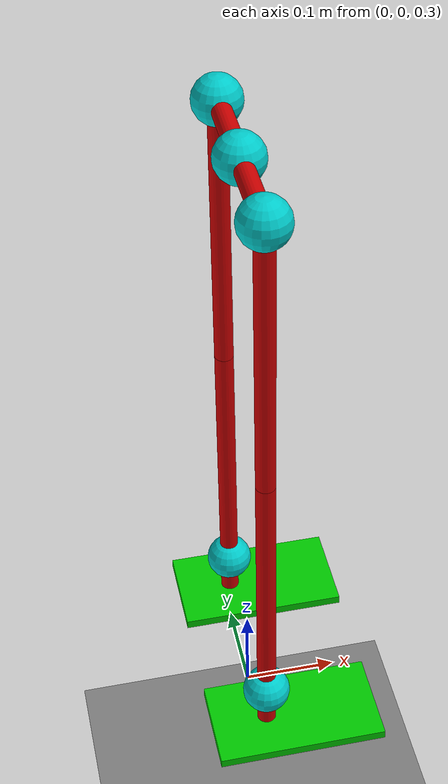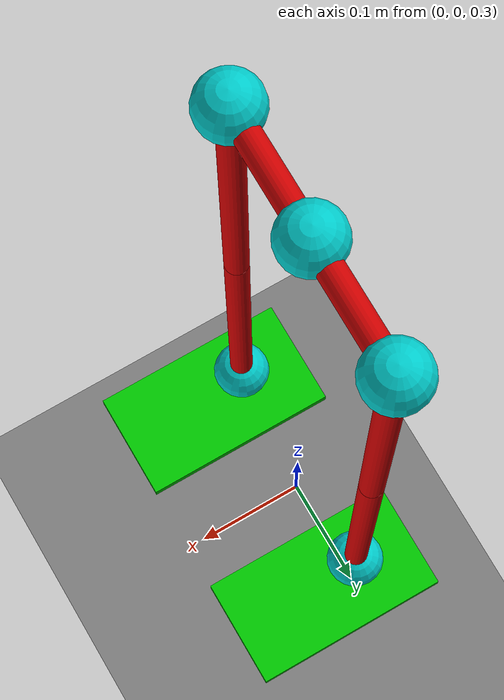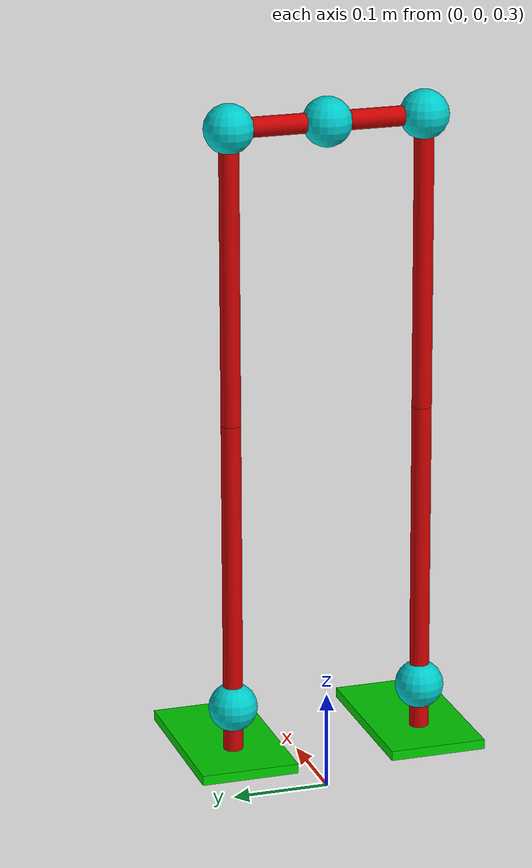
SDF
<?xml version="1.0" ?>
<sdf version="1.6">
  <world name="default">
    <scene>
      <ambient>0.4 0.4 0.4</ambient>
      <grid>false</grid>
    </scene>

    <!-- Light setup for illumination -->
    <light type="directional" name="sun">
      <cast_shadows>false</cast_shadows>
      <pose>5 5 5 0 0 0</pose>
      <diffuse>0.8 0.8 0.8 1</diffuse>
      <specular>0.2 0.2 0.2 1</specular>
      <attenuation>
        <range>1000</range>
        <constant>0.9</constant>
        <linear>0.01</linear>
        <quadratic>0.001</quadratic>
      </attenuation>
      <direction>-1 -1 -1</direction>
    </light>

    <model name="ground_plane">
      <pose>0 0 0 0 0 0</pose>
      <static>true</static>
      <link name="ground_plane_link">
        <collision name="ground_plane_collision">
          <geometry>
            <plane>
              <normal>0 0 1</normal>
              <size>5 5</size>
            </plane>
          </geometry>
        </collision>
        <visual name="ground_plane_visual">
          <geometry>
            <plane>
              <normal>0 0 1</normal>
              <size>5 5</size>
            </plane>
          </geometry>
          <material>
            <diffuse>0.5 0.5 0.5 1</diffuse>
            <specular>0.5 0.5 0.5 1</specular>
          </material>
        </visual>
      </link>
    </model>

    <model name="robot">
      <pose>0 0 1 0 0 0</pose> <!-- 整體懸浮在 z=1.0 -->

      <!-- 髖部基座（共享） -->
      <link name="hip_base">
        <collision name="hip_base_collision">
          <geometry>
            <sphere>
              <radius>0.025</radius>
            </sphere>
          </geometry>
        </collision>
        <visual name="hip_base_visual">
          <geometry>
            <sphere>
              <radius>0.025</radius>
            </sphere>
          </geometry>
          <material>
            <ambient>0 0.5 0.5 1</ambient>
            <diffuse>0 0.8 0.8 1</diffuse>
            <specular>0.8 0.8 0.8 1</specular>
          </material>
        </visual>
      </link>

      <!-- 右腿（原始腿） -->
      <link name="right_link0">
        <pose relative_to="right_joint0">0 -0.05 0 1.5708 0 0</pose>
        <collision name="right_link0_collision_0">
          <geometry>
            <cylinder>
              <radius>0.01</radius>
              <length>0.1</length>
            </cylinder>
          </geometry>
        </collision>
        <visual name="right_link0_visual_0">
          <geometry>
            <cylinder>
              <radius>0.01</radius>
              <length>0.1</length>
            </cylinder>
          </geometry>
          <material>
            <ambient>0.5 0 0 1</ambient>
            <diffuse>0.8 0 0 1</diffuse>
            <specular>0.8 0 0 1</specular>
          </material>
        </visual>
      </link>

      <link name="right_hip1">
        <pose relative_to="right_joint1">0 0 0 0 0 0</pose>
        <collision name="right_hip1_collision">
          <geometry>
            <sphere>
              <radius>0.025</radius>
            </sphere>
          </geometry>
        </collision>
        <visual name="right_hip1_visual">
          <geometry>
            <sphere>
              <radius>0.025</radius>
            </sphere>
          </geometry>
          <material>
            <ambient>0 0.5 0.5 1</ambient>
            <diffuse>0 0.8 0.8 1</diffuse>
            <specular>0.8 0.8 0.8 1</specular>
          </material>
        </visual>
      </link>

      <link name="right_hip2">
        <pose relative_to="right_joint2">0 0 0 0 0 0</pose>
        <collision name="right_hip2_collision">
          <geometry>
            <sphere>
              <radius>0.025</radius>
            </sphere>
          </geometry>
        </collision>
        <visual name="right_hip2_visual">
          <geometry>
            <sphere>
              <radius>0.025</radius>
            </sphere>
          </geometry>
          <material>
            <ambient>0 0.5 0.5 1</ambient>
            <diffuse>0 0.8 0.8 1</diffuse>
            <specular>0.8 0.8 0.8 1</specular>
          </material>
        </visual>
      </link>

      <link name="right_link1">
        <pose relative_to="right_joint3">0 0 -0.15 0 0 0</pose>
        <collision name="right_link1_collision">
          <geometry>
            <cylinder>
              <radius>0.01</radius>
              <length>0.3</length>
            </cylinder>
          </geometry>
        </collision>
        <visual name="right_link1_visual">
          <geometry>
            <cylinder>
              <radius>0.01</radius>
              <length>0.3</length>
            </cylinder>
          </geometry>
          <material>
            <ambient>0.5 0 0 1</ambient>
            <diffuse>0.8 0 0 1</diffuse>
            <specular>0.8 0 0 1</specular>
          </material>
        </visual>
      </link>

      <link name="right_link2">
        <pose relative_to="right_joint4">0 0 -0.15 0 0 0</pose>
        <collision name="right_link2_collision">
          <geometry>
            <cylinder>
              <radius>0.01</radius>
              <length>0.3</length>
            </cylinder>
          </geometry>
        </collision>
        <visual name="right_link2_visual">
          <geometry>
            <cylinder>
              <radius>0.01</radius>
              <length>0.3</length>
            </cylinder>
          </geometry>
          <material>
            <ambient>0.5 0 0 1</ambient>
            <diffuse>0.8 0 0 1</diffuse>
            <specular>0.8 0 0 1</specular>
          </material>
        </visual>
      </link>

      <link name="right_ankle">
        <pose relative_to="right_joint5">0 0 0 0 0 0</pose>
        <collision name="right_ankle_collision">
          <geometry>
            <sphere>
              <radius>0.025</radius>
            </sphere>
          </geometry>
        </collision>
        <visual name="right_ankle_visual">
          <geometry>
            <sphere>
              <radius>0.025</radius>
            </sphere>
          </geometry>
          <material>
            <ambient>0 0.5 0.5 1</ambient>
            <diffuse>0 0.8 0.8 1</diffuse>
            <specular>0.8 0.8 0.8 1</specular>
          </material>
        </visual>
      </link>

      <link name="right_link3">
        <pose relative_to="right_joint6">0 0 -0.025 0 0 0</pose>
        <collision name="right_link3_collision">
          <geometry>
            <cylinder>
              <radius>0.01</radius>
              <length>0.05</length>
            </cylinder>
          </geometry>
        </collision>
        <visual name="right_link3_visual">
          <geometry>
            <cylinder>
              <radius>0.01</radius>
              <length>0.05</length>
            </cylinder>
          </geometry>
          <material>
            <ambient>0.5 0 0 1</ambient>
            <diffuse>0.8 0 0 1</diffuse>
            <specular>0.8 0 0 1</specular>
          </material>
        </visual>
      </link>

      <link name="right_link4">
        <pose relative_to="right_link3">0.03 0 -0.025 0 0 0</pose>
        <collision name="right_link4_collision">
          <geometry>
            <box>
              <size>0.18 0.1 0.01</size>
            </box>
          </geometry>
        </collision>
        <visual name="right_link4_visual">
          <geometry>
            <box>
              <size>0.18 0.1 0.01</size>
            </box>
          </geometry>
          <material>
            <ambient>0 0.5 0 1</ambient>
            <diffuse>0 0.8 0 1</diffuse>
            <specular>0.8 0.8 0.8 1</specular>
          </material>
        </visual>
      </link>

      <!-- 左腿（對稱複製） -->
      <link name="left_link0">
        <pose relative_to="left_joint0">0 0.05 0 1.5708 0 0</pose> <!-- Y 軸對稱 -->
        <collision name="left_link0_collision_0">
          <geometry>
            <cylinder>
              <radius>0.01</radius>
              <length>0.1</length>
            </cylinder>
          </geometry>
        </collision>
        <visual name="left_link0_visual_0">
          <geometry>
            <cylinder>
              <radius>0.01</radius>
              <length>0.1</length>
            </cylinder>
          </geometry>
          <material>
            <ambient>0.5 0 0 1</ambient>
            <diffuse>0.8 0 0 1</diffuse>
            <specular>0.8 0 0 1</specular>
          </material>
        </visual>
      </link>

      <link name="left_hip1">
        <pose relative_to="left_joint1">0 0 0 0 0 0</pose>
        <collision name="left_hip1_collision">
          <geometry>
            <sphere>
              <radius>0.025</radius>
            </sphere>
          </geometry>
        </collision>
        <visual name="left_hip1_visual">
          <geometry>
            <sphere>
              <radius>0.025</radius>
            </sphere>
          </geometry>
          <material>
            <ambient>0 0.5 0.5 1</ambient>
            <diffuse>0 0.8 0.8 1</diffuse>
            <specular>0.8 0.8 0.8 1</specular>
          </material>
        </visual>
      </link>

      <link name="left_hip2">
        <pose relative_to="left_joint2">0 0 0 0 0 0</pose>
        <collision name="left_hip2_collision">
          <geometry>
            <sphere>
              <radius>0.025</radius>
            </sphere>
          </geometry>
        </collision>
        <visual name="left_hip2_visual">
          <geometry>
            <sphere>
              <radius>0.025</radius>
            </sphere>
          </geometry>
          <material>
            <ambient>0 0.5 0.5 1</ambient>
            <diffuse>0 0.8 0.8 1</diffuse>
            <specular>0.8 0.8 0.8 1</specular>
          </material>
        </visual>
      </link>

      <link name="left_link1">
        <pose relative_to="left_joint3">0 0 -0.15 0 0 0</pose>
        <collision name="left_link1_collision">
          <geometry>
            <cylinder>
              <radius>0.01</radius>
              <length>0.3</length>
            </cylinder>
          </geometry>
        </collision>
        <visual name="left_link1_visual">
          <geometry>
            <cylinder>
              <radius>0.01</radius>
              <length>0.3</length>
            </cylinder>
          </geometry>
          <material>
            <ambient>0.5 0 0 1</ambient>
            <diffuse>0.8 0 0 1</diffuse>
            <specular>0.8 0 0 1</specular>
          </material>
        </visual>
      </link>

      <link name="left_link2">
        <pose relative_to="left_joint4">0 0 -0.15 0 0 0</pose>
        <collision name="left_link2_collision">
          <geometry>
            <cylinder>
              <radius>0.01</radius>
              <length>0.3</length>
            </cylinder>
          </geometry>
        </collision>
        <visual name="left_link2_visual">
          <geometry>
            <cylinder>
              <radius>0.01</radius>
              <length>0.3</length>
            </cylinder>
          </geometry>
          <material>
            <ambient>0.5 0 0 1</ambient>
            <diffuse>0.8 0 0 1</diffuse>
            <specular>0.8 0 0 1</specular>
          </material>
        </visual>
      </link>

      <link name="left_ankle">
        <pose relative_to="left_joint5">0 0 0 0 0 0</pose>
        <collision name="left_ankle_collision">
          <geometry>
            <sphere>
              <radius>0.025</radius>
            </sphere>
          </geometry>
        </collision>
        <visual name="left_ankle_visual">
          <geometry>
            <sphere>
              <radius>0.025</radius>
            </sphere>
          </geometry>
          <material>
            <ambient>0 0.5 0.5 1</ambient>
            <diffuse>0 0.8 0.8 1</diffuse>
            <specular>0.8 0.8 0.8 1</specular>
          </material>
        </visual>
      </link>

      <link name="left_link3">
        <pose relative_to="left_joint6">0 0 -0.025 0 0 0</pose>
        <collision name="left_link3_collision">
          <geometry>
            <cylinder>
              <radius>0.01</radius>
              <length>0.05</length>
            </cylinder>
          </geometry>
        </collision>
        <visual name="left_link3_visual">
          <geometry>
            <cylinder>
              <radius>0.01</radius>
              <length>0.05</length>
            </cylinder>
          </geometry>
          <material>
            <ambient>0.5 0 0 1</ambient>
            <diffuse>0.8 0 0 1</diffuse>
            <specular>0.8 0 0 1</specular>
          </material>
        </visual>
      </link>

      <link name="left_link4">
        <pose relative_to="left_link3">0.03 0 -0.025 0 0 0</pose>
        <collision name="left_link4_collision">
          <geometry>
            <box>
              <size>0.18 0.1 0.01</size>
            </box>
          </geometry>
        </collision>
        <visual name="left_link4_visual">
          <geometry>
            <box>
              <size>0.18 0.1 0.01</size>
            </box>
          </geometry>
          <material>
            <ambient>0 0.5 0 1</ambient>
            <diffuse>0 0.8 0 1</diffuse>
            <specular>0.8 0.8 0.8 1</specular>
          </material>
        </visual>
      </link>

      <!-- 右腿關節 -->
      <joint name="right_joint0" type="fixed">
        <pose relative_to="hip_base">0 0 0 0 0 0</pose> <!-- 右側偏移 -->
        <parent>hip_base</parent>
        <child>right_link0</child>
      </joint>

      <joint name="right_joint1" type="revolute">
        <pose relative_to="right_link0">0 0 0.05 -1.5708 0 0</pose>
        <parent>right_link0</parent>
        <child>right_hip1</child>
        <axis>
          <xyz>0 0 1</xyz>
          <dynamics>
            <damping>5.0</damping> <!-- 更新阻尼值 -->
          </dynamics>
        </axis>
      </joint>

      <joint name="right_joint2" type="revolute">
        <pose relative_to="right_hip1">0 0 0 0 0 0</pose>
        <parent>right_hip1</parent>
        <child>right_hip2</child>
        <axis>
          <xyz>1 0 0</xyz>
          <dynamics>
            <damping>5.0</damping> <!-- 更新阻尼值 -->
          </dynamics>
        </axis>
      </joint>

      <joint name="right_joint3" type="revolute">
        <pose relative_to="right_hip2">0 0 0 0 0 0</pose>
        <parent>right_hip2</parent>
        <child>right_link1</child>
        <axis>
          <xyz>0 1 0</xyz>
          <dynamics>
            <damping>5.0</damping> <!-- 更新阻尼值 -->
          </dynamics>
        </axis>
      </joint>

      <joint name="right_joint4" type="revolute">
        <pose relative_to="right_link1">0 0 -0.15 0 0 0</pose>
        <parent>right_link1</parent>
        <child>right_link2</child>
        <axis>
          <xyz>0 1 0</xyz>
          <dynamics>
            <damping>0.25</damping>
          </dynamics>
        </axis>
      </joint>

      <joint name="right_joint5" type="revolute">
        <pose relative_to="right_link2">0 0 -0.15 0 0 0</pose>
        <parent>right_link2</parent>
        <child>right_ankle</child>
        <axis>
          <xyz>0 1 0</xyz>
          <dynamics>
            <damping>0.25</damping>
          </dynamics>
        </axis>
      </joint>

      <joint name="right_joint6" type="revolute">
        <pose relative_to="right_ankle">0 0 0 0 0 0</pose>
        <parent>right_ankle</parent>
        <child>right_link3</child>
        <axis>
          <xyz>1 0 0</xyz>
          <dynamics>
            <damping>0.25</damping>
          </dynamics>
        </axis>
      </joint>

      <joint name="right_joint7" type="fixed">
        <parent>right_link3</parent>
        <child>right_link4</child>
        <pose relative_to="right_link3">0 0 -0.075 0 0 0</pose>
      </joint>

      <!-- 左腿關節 -->
      <joint name="left_joint0" type="fixed">
        <pose relative_to="hip_base">0 0 0 0 0 0</pose> <!-- 左側偏移 -->
        <parent>hip_base</parent>
        <child>left_link0</child>
      </joint>

      <joint name="left_joint1" type="revolute">
        <pose relative_to="left_link0">0 0 -0.05 -1.5708 0 0</pose>
        <parent>left_link0</parent>
        <child>left_hip1</child>
        <axis>
          <xyz>0 0 1</xyz>
          <dynamics>
            <damping>5.0</damping> <!-- 更新阻尼值 -->
          </dynamics>
        </axis>
      </joint>

      <joint name="left_joint2" type="revolute">
        <pose relative_to="left_hip1">0 0 0 0 0 0</pose>
        <parent>left_hip1</parent>
        <child>left_hip2</child>
        <axis>
          <xyz>1 0 0</xyz>
          <dynamics>
            <damping>5.0</damping> <!-- 更新阻尼值 -->
          </dynamics>
        </axis>
      </joint>

      <joint name="left_joint3" type="revolute">
        <pose relative_to="left_hip2">0 0 0 0 0 0</pose>
        <parent>left_hip2</parent>
        <child>left_link1</child>
        <axis>
          <xyz>0 1 0</xyz>
          <dynamics>
            <damping>5.0</damping> <!-- 更新阻尼值 -->
          </dynamics>
        </axis>
      </joint>

      <joint name="left_joint4" type="revolute">
        <pose relative_to="left_link1">0 0 -0.15 0 0 0</pose>
        <parent>left_link1</parent>
        <child>left_link2</child>
        <axis>
          <xyz>0 1 0</xyz>
          <dynamics>
            <damping>0.25</damping>
          </dynamics>
        </axis>
      </joint>

      <joint name="left_joint5" type="revolute">
        <pose relative_to="left_link2">0 0 -0.15 0 0 0</pose>
        <parent>left_link2</parent>
        <child>left_ankle</child>
        <axis>
          <xyz>0 1 0</xyz>
          <dynamics>
            <damping>0.25</damping>
          </dynamics>
        </axis>
      </joint>

      <joint name="left_joint6" type="revolute">
        <pose relative_to="left_ankle">0 0 0 0 0 0</pose>
        <parent>left_ankle</parent>
        <child>left_link3</child>
        <axis>
          <xyz>1 0 0</xyz>
          <dynamics>
            <damping>0.25</damping>
          </dynamics>
        </axis>
      </joint>

      <joint name="left_joint7" type="fixed">
        <parent>left_link3</parent>
        <child>left_link4</child>
        <pose relative_to="left_link3">0 0 -0.075 0 0 0</pose>
      </joint>

      <!-- Controller -->
      <plugin filename="gz-sim-joint-trajectory-controller-system"
              name="gz::sim::systems::JointTrajectoryController">
        <!-- 右腿控制 -->
        <joint_name>right_joint1</joint_name>
        <initial_position>0</initial_position>
        <position_p_gain>50</position_p_gain> <!-- 增強 P 增益 -->
        <position_i_gain>0.5</position_i_gain> <!-- 增強 I 增益 -->
        <position_d_gain>5</position_d_gain>  <!-- 增強 D 增益 -->
        <position_i_min>-1</position_i_min>
        <position_i_max>1</position_i_max>
        <position_cmd_min>-10</position_cmd_min>
        <position_cmd_max>10</position_cmd_max>

        <joint_name>right_joint2</joint_name>
        <initial_position>0</initial_position>
        <position_p_gain>50</position_p_gain> <!-- 增強 P 增益 -->
        <position_i_gain>0.5</position_i_gain> <!-- 增強 I 增益 -->
        <position_d_gain>5</position_d_gain>  <!-- 增強 D 增益 -->
        <position_i_min>-1</position_i_min>
        <position_i_max>1</position_i_max>
        <position_cmd_min>-10</position_cmd_min>
        <position_cmd_max>10</position_cmd_max>

        <joint_name>right_joint3</joint_name>
        <initial_position>0</initial_position>
        <position_p_gain>50</position_p_gain> <!-- 增強 P 增益 -->
        <position_i_gain>0.5</position_i_gain> <!-- 增強 I 增益 -->
        <position_d_gain>5</position_d_gain>  <!-- 增強 D 增益 -->
        <position_i_min>-1</position_i_min>
        <position_i_max>1</position_i_max>
        <position_cmd_min>-10</position_cmd_min>
        <position_cmd_max>10</position_cmd_max>

        <joint_name>right_joint4</joint_name>
        <initial_position>0</initial_position>
        <position_p_gain>50</position_p_gain> <!-- 增強 P 增益 -->
        <position_i_gain>0.5</position_i_gain> <!-- 增強 I 增益 -->
        <position_d_gain>5</position_d_gain>  <!-- 增強 D 增益 -->
        <position_i_min>-1</position_i_min>
        <position_i_max>1</position_i_max>
        <position_cmd_min>-10</position_cmd_min>
        <position_cmd_max>10</position_cmd_max>

        <joint_name>right_joint5</joint_name>
        <initial_position>0</initial_position>
        <position_p_gain>50</position_p_gain> <!-- 增強 P 增益 -->
        <position_i_gain>0.5</position_i_gain> <!-- 增強 I 增益 -->
        <position_d_gain>5</position_d_gain>  <!-- 增強 D 增益 -->
        <position_i_min>-1</position_i_min>
        <position_i_max>1</position_i_max>
        <position_cmd_min>-10</position_cmd_min>
        <position_cmd_max>10</position_cmd_max>

        <joint_name>right_joint6</joint_name>
        <initial_position>0</initial_position>
        <position_p_gain>50</position_p_gain> <!-- 增強 P 增益 -->
        <position_i_gain>0.5</position_i_gain> <!-- 增強 I 增益 -->
        <position_d_gain>5</position_d_gain>  <!-- 增強 D 增益 -->
        <position_i_min>-1</position_i_min>
        <position_i_max>1</position_i_max>
        <position_cmd_min>-10</position_cmd_min>
        <position_cmd_max>10</position_cmd_max>

        <!-- 左腿控制 -->
        <joint_name>left_joint1</joint_name>
        <initial_position>0</initial_position>
        <position_p_gain>50</position_p_gain> <!-- 增強 P 增益 -->
        <position_i_gain>0.5</position_i_gain> <!-- 增強 I 增益 -->
        <position_d_gain>5</position_d_gain>  <!-- 增強 D 增益 -->
        <position_i_min>-1</position_i_min>
        <position_i_max>1</position_i_max>
        <position_cmd_min>-10</position_cmd_min>
        <position_cmd_max>10</position_cmd_max>

        <joint_name>left_joint2</joint_name>
        <initial_position>0</initial_position>
        <position_p_gain>50</position_p_gain> <!-- 增強 P 增益 -->
        <position_i_gain>0.5</position_i_gain> <!-- 增強 I 增益 -->
        <position_d_gain>5</position_d_gain>  <!-- 增強 D 增益 -->
        <position_i_min>-1</position_i_min>
        <position_i_max>1</position_i_max>
        <position_cmd_min>-10</position_cmd_min>
        <position_cmd_max>10</position_cmd_max>

        <joint_name>left_joint3</joint_name>
        <initial_position>0</initial_position>
        <position_p_gain>50</position_p_gain> <!-- 增強 P 增益 -->
        <position_i_gain>0.5</position_i_gain> <!-- 增強 I 增益 -->
        <position_d_gain>5</position_d_gain>  <!-- 增強 D 增益 -->
        <position_i_min>-1</position_i_min>
        <position_i_max>1</position_i_max>
        <position_cmd_min>-10</position_cmd_min>
        <position_cmd_max>10</position_cmd_max>

        <joint_name>left_joint4</joint_name>
        <initial_position>0</initial_position>
        <position_p_gain>50</position_p_gain> <!-- 增強 P 增益 -->
        <position_i_gain>0.5</position_i_gain> <!-- 增強 I 增益 -->
        <position_d_gain>5</position_d_gain>  <!-- 增強 D 增益 -->
        <position_i_min>-1</position_i_min>
        <position_i_max>1</position_i_max>
        <position_cmd_min>-10</position_cmd_min>
        <position_cmd_max>10</position_cmd_max>

        <joint_name>left_joint5</joint_name>
        <initial_position>0</initial_position>
        <position_p_gain>50</position_p_gain> <!-- 增強 P 增益 -->
        <position_i_gain>0.5</position_i_gain> <!-- 增強 I 增益 -->
        <position_d_gain>5</position_d_gain>  <!-- 增強 D 增益 -->
        <position_i_min>-1</position_i_min>
        <position_i_max>1</position_i_max>
        <position_cmd_min>-10</position_cmd_min>
        <position_cmd_max>10</position_cmd_max>

        <joint_name>left_joint6</joint_name>
        <initial_position>0</initial_position>
        <position_p_gain>50</position_p_gain> <!-- 增強 P 增益 -->
        <position_i_gain>0.5</position_i_gain> <!-- 增強 I 增益 -->
        <position_d_gain>5</position_d_gain>  <!-- 增強 D 增益 -->
        <position_i_min>-1</position_i_min>
        <position_i_max>1</position_i_max>
        <position_cmd_min>-10</position_cmd_min>
        <position_cmd_max>10</position_cmd_max>
      </plugin>
    </model>
  </world>
</sdf>
